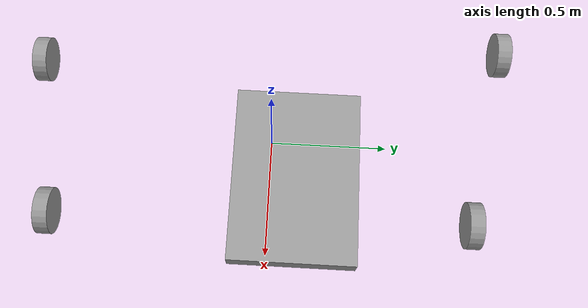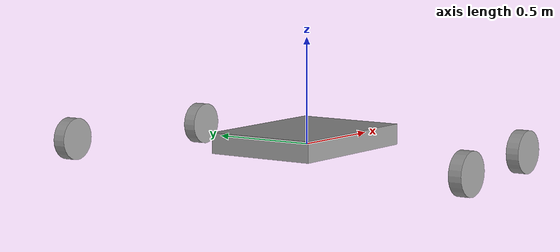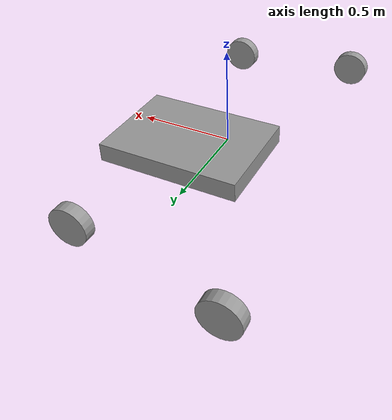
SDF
<?xml version='1.0'?>
<sdf version='1.6'>
  <model name='WheeledRobot'>
    <link name='link_0'>
      <pose frame=''>0.154417 0.110129 0 0 -0 0</pose>
      <inertial>
        <mass>1</mass>
        <inertia>
          <ixx>0.166667</ixx>
          <ixy>0</ixy>
          <ixz>0</ixz>
          <iyy>0.166667</iyy>
          <iyz>0</iyz>
          <izz>0.166667</izz>
        </inertia>
        <pose frame=''>0 0 0 0 -0 0</pose>
      </inertial>
      <gravity>1</gravity>
      <self_collide>0</self_collide>
      <kinematic>0</kinematic>
      <visual name='visual'>
        <pose frame=''>0 0 0 0 -0 0</pose>
        <geometry>
          <box>
            <size>0.762 0.5461 0.1</size>
          </box>
        </geometry>
        <material>
          <lighting>1</lighting>
          <script>
            <uri>file://media/materials/scripts/gazebo.material</uri>
            <name>Gazebo/Grey</name>
          </script>
          <shader type='pixel'>
            <normal_map>__default__</normal_map>
          </shader>
          <ambient>0.3 0.3 0.3 1</ambient>
          <diffuse>0.7 0.7 0.7 1</diffuse>
          <specular>0.01 0.01 0.01 1</specular>
          <emissive>0 0 0 1</emissive>
        </material>
        <transparency>0</transparency>
        <cast_shadows>1</cast_shadows>
      </visual>
      <collision name='collision'>
        <laser_retro>0</laser_retro>
        <max_contacts>10</max_contacts>
        <pose frame=''>0 0 0 0 -0 0</pose>
        <geometry>
          <box>
            <size>0.762 0.5461 0.1</size>
          </box>
        </geometry>
        <surface>
          <friction>
            <ode>
              <mu>1</mu>
              <mu2>1</mu2>
              <fdir1>0 0 0</fdir1>
              <slip1>0</slip1>
              <slip2>0</slip2>
            </ode>
            <torsional>
              <coefficient>1</coefficient>
              <patch_radius>0</patch_radius>
              <surface_radius>0</surface_radius>
              <use_patch_radius>1</use_patch_radius>
              <ode>
                <slip>0</slip>
              </ode>
            </torsional>
          </friction>
          <bounce>
            <restitution_coefficient>0</restitution_coefficient>
            <threshold>1e+06</threshold>
          </bounce>
          <contact>
            <collide_without_contact>0</collide_without_contact>
            <collide_without_contact_bitmask>1</collide_without_contact_bitmask>
            <collide_bitmask>1</collide_bitmask>
            <ode>
              <soft_cfm>0</soft_cfm>
              <soft_erp>0.2</soft_erp>
              <kp>1e+13</kp>
              <kd>1</kd>
              <max_vel>0.01</max_vel>
              <min_depth>0</min_depth>
            </ode>
            <bullet>
              <split_impulse>1</split_impulse>
              <split_impulse_penetration_threshold>-0.01</split_impulse_penetration_threshold>
              <soft_cfm>0</soft_cfm>
              <soft_erp>0.2</soft_erp>
              <kp>1e+13</kp>
              <kd>1</kd>
            </bullet>
          </contact>
        </surface>
      </collision>
    </link>
    <link name='link_1'>
      <pose frame=''>-0.35172 -1.06061 0 1.5707 -0 0</pose>
      <inertial>
        <mass>1</mass>
        <inertia>
          <ixx>0.145833</ixx>
          <ixy>0</ixy>
          <ixz>0</ixz>
          <iyy>0.145833</iyy>
          <iyz>0</iyz>
          <izz>0.125</izz>
        </inertia>
        <pose frame=''>0 0 0 0 -0 0</pose>
      </inertial>
      <gravity>1</gravity>
      <self_collide>0</self_collide>
      <kinematic>0</kinematic>
      <visual name='visual'>
        <pose frame=''>0 0 0 0 -0 0</pose>
        <geometry>
          <cylinder>
            <radius>0.1</radius>
            <length>0.062</length>
          </cylinder>
        </geometry>
        <material>
          <lighting>1</lighting>
          <script>
            <uri>file://media/materials/scripts/gazebo.material</uri>
            <name>Gazebo/Grey</name>
          </script>
          <shader type='pixel'>
            <normal_map>__default__</normal_map>
          </shader>
          <ambient>0.3 0.3 0.3 1</ambient>
          <diffuse>0.7 0.7 0.7 1</diffuse>
          <specular>0.01 0.01 0.01 1</specular>
          <emissive>0 0 0 1</emissive>
        </material>
        <transparency>0</transparency>
        <cast_shadows>1</cast_shadows>
      </visual>
      <collision name='collision'>
        <laser_retro>0</laser_retro>
        <max_contacts>10</max_contacts>
        <pose frame=''>0 0 0 0 -0 0</pose>
        <geometry>
          <cylinder>
            <radius>0.1</radius>
            <length>0.062</length>
          </cylinder>
        </geometry>
        <surface>
          <friction>
            <ode>
              <mu>1</mu>
              <mu2>1</mu2>
              <fdir1>0 0 0</fdir1>
              <slip1>0</slip1>
              <slip2>0</slip2>
            </ode>
            <torsional>
              <coefficient>1</coefficient>
              <patch_radius>0</patch_radius>
              <surface_radius>0</surface_radius>
              <use_patch_radius>1</use_patch_radius>
              <ode>
                <slip>0</slip>
              </ode>
            </torsional>
          </friction>
          <bounce>
            <restitution_coefficient>0</restitution_coefficient>
            <threshold>1e+06</threshold>
          </bounce>
          <contact>
            <collide_without_contact>0</collide_without_contact>
            <collide_without_contact_bitmask>1</collide_without_contact_bitmask>
            <collide_bitmask>1</collide_bitmask>
            <ode>
              <soft_cfm>0</soft_cfm>
              <soft_erp>0.2</soft_erp>
              <kp>1e+13</kp>
              <kd>1</kd>
              <max_vel>0.01</max_vel>
              <min_depth>0</min_depth>
            </ode>
            <bullet>
              <split_impulse>1</split_impulse>
              <split_impulse_penetration_threshold>-0.01</split_impulse_penetration_threshold>
              <soft_cfm>0</soft_cfm>
              <soft_erp>0.2</soft_erp>
              <kp>1e+13</kp>
              <kd>1</kd>
            </bullet>
          </contact>
        </surface>
      </collision>
    </link>
    <link name='link_1_clone'>
      <pose frame=''>0.357518 -0.945745 0 1.5707 -0 0</pose>
      <inertial>
        <mass>1</mass>
        <inertia>
          <ixx>0.145833</ixx>
          <ixy>0</ixy>
          <ixz>0</ixz>
          <iyy>0.145833</iyy>
          <iyz>0</iyz>
          <izz>0.125</izz>
        </inertia>
        <pose frame=''>0 0 0 0 -0 0</pose>
      </inertial>
      <self_collide>0</self_collide>
      <kinematic>0</kinematic>
      <visual name='visual'>
        <pose frame=''>0 0 0 0 -0 0</pose>
        <geometry>
          <cylinder>
            <radius>0.1</radius>
            <length>0.062</length>
          </cylinder>
        </geometry>
        <material>
          <lighting>1</lighting>
          <script>
            <uri>file://media/materials/scripts/gazebo.material</uri>
            <name>Gazebo/Grey</name>
          </script>
          <shader type='pixel'>
            <normal_map>__default__</normal_map>
          </shader>
          <ambient>0.3 0.3 0.3 1</ambient>
          <diffuse>0.7 0.7 0.7 1</diffuse>
          <specular>0.01 0.01 0.01 1</specular>
          <emissive>0 0 0 1</emissive>
        </material>
        <transparency>0</transparency>
        <cast_shadows>1</cast_shadows>
      </visual>
      <collision name='collision'>
        <laser_retro>0</laser_retro>
        <max_contacts>10</max_contacts>
        <pose frame=''>0 0 0 0 -0 0</pose>
        <geometry>
          <cylinder>
            <radius>0.1</radius>
            <length>0.062</length>
          </cylinder>
        </geometry>
        <surface>
          <friction>
            <ode>
              <mu>1</mu>
              <mu2>1</mu2>
              <fdir1>0 0 0</fdir1>
              <slip1>0</slip1>
              <slip2>0</slip2>
            </ode>
            <torsional>
              <coefficient>1</coefficient>
              <patch_radius>0</patch_radius>
              <surface_radius>0</surface_radius>
              <use_patch_radius>1</use_patch_radius>
              <ode>
                <slip>0</slip>
              </ode>
            </torsional>
          </friction>
          <bounce>
            <restitution_coefficient>0</restitution_coefficient>
            <threshold>1e+06</threshold>
          </bounce>
          <contact>
            <collide_without_contact>0</collide_without_contact>
            <collide_without_contact_bitmask>1</collide_without_contact_bitmask>
            <collide_bitmask>1</collide_bitmask>
            <ode>
              <soft_cfm>0</soft_cfm>
              <soft_erp>0.2</soft_erp>
              <kp>1e+13</kp>
              <kd>1</kd>
              <max_vel>0.01</max_vel>
              <min_depth>0</min_depth>
            </ode>
            <bullet>
              <split_impulse>1</split_impulse>
              <split_impulse_penetration_threshold>-0.01</split_impulse_penetration_threshold>
              <soft_cfm>0</soft_cfm>
              <soft_erp>0.2</soft_erp>
              <kp>1e+13</kp>
              <kd>1</kd>
            </bullet>
          </contact>
        </surface>
      </collision>
    </link>
    <link name='link_1_clone_clone'>
      <pose frame=''>-0.485135 1.02298 0 1.5707 -0 0</pose>
      <inertial>
        <mass>1</mass>
        <inertia>
          <ixx>0.145833</ixx>
          <ixy>0</ixy>
          <ixz>0</ixz>
          <iyy>0.145833</iyy>
          <iyz>0</iyz>
          <izz>0.125</izz>
        </inertia>
        <pose frame=''>0 0 0 0 -0 0</pose>
      </inertial>
      <self_collide>0</self_collide>
      <kinematic>0</kinematic>
      <visual name='visual'>
        <pose frame=''>0 0 0 0 -0 0</pose>
        <geometry>
          <cylinder>
            <radius>0.1</radius>
            <length>0.062</length>
          </cylinder>
        </geometry>
        <material>
          <lighting>1</lighting>
          <script>
            <uri>file://media/materials/scripts/gazebo.material</uri>
            <name>Gazebo/Grey</name>
          </script>
          <shader type='pixel'>
            <normal_map>__default__</normal_map>
          </shader>
          <ambient>0.3 0.3 0.3 1</ambient>
          <diffuse>0.7 0.7 0.7 1</diffuse>
          <specular>0.01 0.01 0.01 1</specular>
          <emissive>0 0 0 1</emissive>
        </material>
        <transparency>0</transparency>
        <cast_shadows>1</cast_shadows>
      </visual>
      <collision name='collision'>
        <laser_retro>0</laser_retro>
        <max_contacts>10</max_contacts>
        <pose frame=''>0 0 0 0 -0 0</pose>
        <geometry>
          <cylinder>
            <radius>0.1</radius>
            <length>0.062</length>
          </cylinder>
        </geometry>
        <surface>
          <friction>
            <ode>
              <mu>1</mu>
              <mu2>1</mu2>
              <fdir1>0 0 0</fdir1>
              <slip1>0</slip1>
              <slip2>0</slip2>
            </ode>
            <torsional>
              <coefficient>1</coefficient>
              <patch_radius>0</patch_radius>
              <surface_radius>0</surface_radius>
              <use_patch_radius>1</use_patch_radius>
              <ode>
                <slip>0</slip>
              </ode>
            </torsional>
          </friction>
          <bounce>
            <restitution_coefficient>0</restitution_coefficient>
            <threshold>1e+06</threshold>
          </bounce>
          <contact>
            <collide_without_contact>0</collide_without_contact>
            <collide_without_contact_bitmask>1</collide_without_contact_bitmask>
            <collide_bitmask>1</collide_bitmask>
            <ode>
              <soft_cfm>0</soft_cfm>
              <soft_erp>0.2</soft_erp>
              <kp>1e+13</kp>
              <kd>1</kd>
              <max_vel>0.01</max_vel>
              <min_depth>0</min_depth>
            </ode>
            <bullet>
              <split_impulse>1</split_impulse>
              <split_impulse_penetration_threshold>-0.01</split_impulse_penetration_threshold>
              <soft_cfm>0</soft_cfm>
              <soft_erp>0.2</soft_erp>
              <kp>1e+13</kp>
              <kd>1</kd>
            </bullet>
          </contact>
        </surface>
      </collision>
    </link>
    <link name='link_1_clone_clone_0'>
      <pose frame=''>0.32492 0.873243 0 1.5707 -0 0</pose>
      <inertial>
        <mass>1</mass>
        <inertia>
          <ixx>0.145833</ixx>
          <ixy>0</ixy>
          <ixz>0</ixz>
          <iyy>0.145833</iyy>
          <iyz>0</iyz>
          <izz>0.125</izz>
        </inertia>
        <pose frame=''>0 0 0 0 -0 0</pose>
      </inertial>
      <self_collide>0</self_collide>
      <kinematic>0</kinematic>
      <visual name='visual'>
        <pose frame=''>0 0 0 0 -0 0</pose>
        <geometry>
          <cylinder>
            <radius>0.1</radius>
            <length>0.062</length>
          </cylinder>
        </geometry>
        <material>
          <lighting>1</lighting>
          <script>
            <uri>file://media/materials/scripts/gazebo.material</uri>
            <name>Gazebo/Grey</name>
          </script>
          <shader type='pixel'>
            <normal_map>__default__</normal_map>
          </shader>
          <ambient>0.3 0.3 0.3 1</ambient>
          <diffuse>0.7 0.7 0.7 1</diffuse>
          <specular>0.01 0.01 0.01 1</specular>
          <emissive>0 0 0 1</emissive>
        </material>
        <transparency>0</transparency>
        <cast_shadows>1</cast_shadows>
      </visual>
      <collision name='collision'>
        <laser_retro>0</laser_retro>
        <max_contacts>10</max_contacts>
        <pose frame=''>0 0 0 0 -0 0</pose>
        <geometry>
          <cylinder>
            <radius>0.1</radius>
            <length>0.062</length>
          </cylinder>
        </geometry>
        <surface>
          <friction>
            <ode>
              <mu>1</mu>
              <mu2>1</mu2>
              <fdir1>0 0 0</fdir1>
              <slip1>0</slip1>
              <slip2>0</slip2>
            </ode>
            <torsional>
              <coefficient>1</coefficient>
              <patch_radius>0</patch_radius>
              <surface_radius>0</surface_radius>
              <use_patch_radius>1</use_patch_radius>
              <ode>
                <slip>0</slip>
              </ode>
            </torsional>
          </friction>
          <bounce>
            <restitution_coefficient>0</restitution_coefficient>
            <threshold>1e+06</threshold>
          </bounce>
          <contact>
            <collide_without_contact>0</collide_without_contact>
            <collide_without_contact_bitmask>1</collide_without_contact_bitmask>
            <collide_bitmask>1</collide_bitmask>
            <ode>
              <soft_cfm>0</soft_cfm>
              <soft_erp>0.2</soft_erp>
              <kp>1e+13</kp>
              <kd>1</kd>
              <max_vel>0.01</max_vel>
              <min_depth>0</min_depth>
            </ode>
            <bullet>
              <split_impulse>1</split_impulse>
              <split_impulse_penetration_threshold>-0.01</split_impulse_penetration_threshold>
              <soft_cfm>0</soft_cfm>
              <soft_erp>0.2</soft_erp>
              <kp>1e+13</kp>
              <kd>1</kd>
            </bullet>
          </contact>
        </surface>
      </collision>
    </link>
    <static>0</static>
    <allow_auto_disable>1</allow_auto_disable>
  </model>
</sdf>
